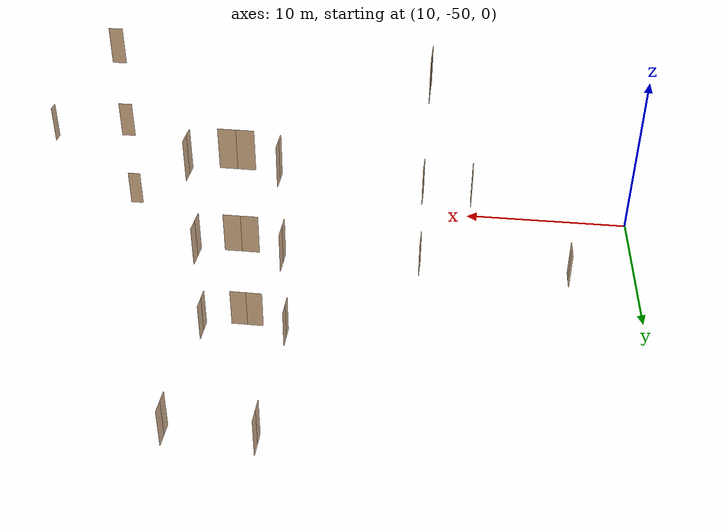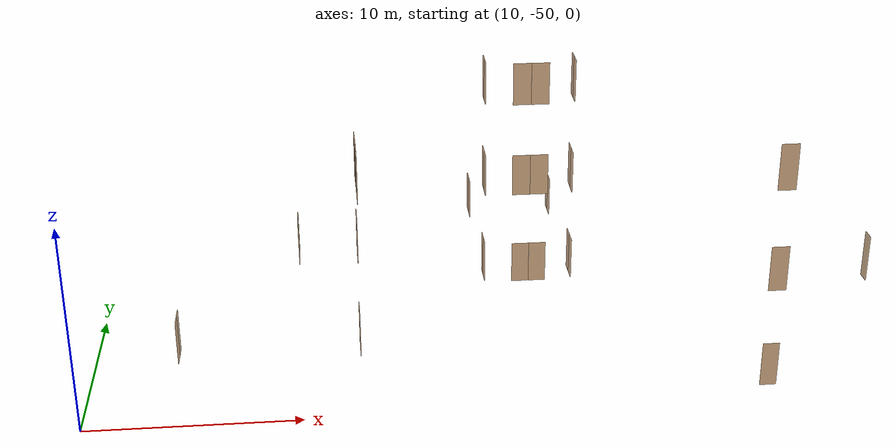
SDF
<sdf version="1.7">
 <world name="sim_world">
  <model name="p1">
   <pose>13.92503185090813 -43.73868181683508 0.0 0 0 1.5707963267948966</pose>
   <link name="right">
    <pose>0.3680335397469694 0 1.11 0 0 0</pose>
    <visual name="right_visual">
     <geometry><box><size>0.7260670794939388 0.03 2.2</size></box></geometry>
     <material>
      <ambient>0.5 0.25 0 0.6</ambient>
      <diffuse>0.5 0.25 0 0.6</diffuse>
      <pbr><metal><metalness>0.0</metalness></metal></pbr>
     </material>
    </visual>
    <collision name="right_collision">
     <geometry><box><size>0.7260670794939388 0.03 2.2</size></box></geometry>
     <surface><contact><collide_bitmask>0x02</collide_bitmask></contact></surface>
    </collision>
    <inertial>
     <mass>50.0</mass>
     <inertia><ixx>20.17041666666667</ixx><iyy>22.363222516353577</iyy><izz>2.2003058496869072</izz></inertia>
    </inertial>
   </link>
   <joint name="right_joint" type="revolute">
    <parent>world</parent>
    <child>right</child>
    <axis><xyz>0 0 -1</xyz><limit><lower>0</lower><upper>1.57</upper></limit></axis>
    <pose>0.3680335397469694 0 0 0 0 0</pose>
   </joint>
   <link name="left">
    <pose>-0.3680335397469694 0 1.11 0 0 0</pose>
    <visual name="left_visual">
     <geometry><box><size>0.7260670794939388 0.03 2.2</size></box></geometry>
     <material>
      <ambient>0.5 0.25 0 0.6</ambient>
      <diffuse>0.5 0.25 0 0.6</diffuse>
      <pbr><metal><metalness>0.0</metalness></metal></pbr>
     </material>
    </visual>
    <collision name="left_collision">
     <geometry><box><size>0.7260670794939388 0.03 2.2</size></box></geometry>
     <surface><contact><collide_bitmask>0x02</collide_bitmask></contact></surface>
    </collision>
    <inertial>
     <mass>50.0</mass>
     <inertia><ixx>20.17041666666667</ixx><iyy>22.363222516353577</iyy><izz>2.2003058496869072</izz></inertia>
    </inertial>
   </link>
   <joint name="left_joint" type="revolute">
    <parent>world</parent>
    <child>left</child>
    <axis><xyz>0 0 -1</xyz><limit><lower>-1.57</lower><upper>0</upper></limit></axis>
    <pose>-0.3680335397469694 0 0 0 0 0</pose>
   </joint>
   <plugin name="register_component" filename="libregister_component.so">
    <component name="Door">
     <v_max_door>0.5</v_max_door>
     <a_max_door>0.3</a_max_door>
     <a_nom_door>0.15</a_nom_door>
     <dx_min_door>0.01</dx_min_door>
     <f_max_door>500.0</f_max_door>
     <ros_interface>true</ros_interface>
     <door name="p1" type="DoubleSwingDoor" left_joint_name="left_joint" right_joint_name="right_joint"/>
    </component>
   </plugin>
  </model>
  <model name="p4">
   <pose>22.707593849071152 -43.76862537406302 0.0 0 0 1.5707963267948966</pose>
   <link name="right">
    <pose>0.36870574205208584 0 1.11 0 0 0</pose>
    <visual name="right_visual">
     <geometry><box><size>0.7274114841041717 0.03 2.2</size></box></geometry>
     <material>
      <ambient>0.5 0.25 0 0.6</ambient>
      <diffuse>0.5 0.25 0 0.6</diffuse>
      <pbr><metal><metalness>0.0</metalness></metal></pbr>
     </material>
    </visual>
    <collision name="right_collision">
     <geometry><box><size>0.7274114841041717 0.03 2.2</size></box></geometry>
     <surface><contact><collide_bitmask>0x02</collide_bitmask></contact></surface>
    </collision>
    <inertial>
     <mass>50.0</mass>
     <inertia><ixx>20.17041666666667</ixx><iyy>22.37136444669431</iyy><izz>2.2084477800276403</izz></inertia>
    </inertial>
   </link>
   <joint name="right_joint" type="revolute">
    <parent>world</parent>
    <child>right</child>
    <axis><xyz>0 0 -1</xyz><limit><lower>0</lower><upper>1.57</upper></limit></axis>
    <pose>0.36870574205208584 0 0 0 0 0</pose>
   </joint>
   <link name="left">
    <pose>-0.36870574205208584 0 1.11 0 0 0</pose>
    <visual name="left_visual">
     <geometry><box><size>0.7274114841041717 0.03 2.2</size></box></geometry>
     <material>
      <ambient>0.5 0.25 0 0.6</ambient>
      <diffuse>0.5 0.25 0 0.6</diffuse>
      <pbr><metal><metalness>0.0</metalness></metal></pbr>
     </material>
    </visual>
    <collision name="left_collision">
     <geometry><box><size>0.7274114841041717 0.03 2.2</size></box></geometry>
     <surface><contact><collide_bitmask>0x02</collide_bitmask></contact></surface>
    </collision>
    <inertial>
     <mass>50.0</mass>
     <inertia><ixx>20.17041666666667</ixx><iyy>22.37136444669431</iyy><izz>2.2084477800276403</izz></inertia>
    </inertial>
   </link>
   <joint name="left_joint" type="revolute">
    <parent>world</parent>
    <child>left</child>
    <axis><xyz>0 0 -1</xyz><limit><lower>-1.57</lower><upper>0</upper></limit></axis>
    <pose>-0.36870574205208584 0 0 0 0 0</pose>
   </joint>
   <plugin name="register_component" filename="libregister_component.so">
    <component name="Door">
     <v_max_door>0.5</v_max_door>
     <a_max_door>0.3</a_max_door>
     <a_nom_door>0.15</a_nom_door>
     <dx_min_door>0.01</dx_min_door>
     <f_max_door>500.0</f_max_door>
     <ros_interface>true</ros_interface>
     <door name="p4" type="DoubleSwingDoor" left_joint_name="left_joint" right_joint_name="right_joint"/>
    </component>
   </plugin>
  </model>
  <model name="p5">
   <pose>31.846945275695557 -37.258029391721756 0.0 0 0 3.141592653589793</pose>
   <link name="right">
    <pose>0.44889781043524657 0 1.11 0 0 0</pose>
    <visual name="right_visual">
     <geometry><box><size>0.8877956208704931 0.03 2.2</size></box></geometry>
     <material>
      <ambient>0.5 0.25 0 0.6</ambient>
      <diffuse>0.5 0.25 0 0.6</diffuse>
      <pbr><metal><metalness>0.0</metalness></metal></pbr>
     </material>
    </visual>
    <collision name="right_collision">
     <geometry><box><size>0.8877956208704931 0.03 2.2</size></box></geometry>
     <surface><contact><collide_bitmask>0x02</collide_bitmask></contact></surface>
    </collision>
    <inertial>
     <mass>50.0</mass>
     <inertia><ixx>20.17041666666667</ixx><iyy>23.450754435153442</iyy><izz>3.2878377684867686</izz></inertia>
    </inertial>
   </link>
   <joint name="right_joint" type="revolute">
    <parent>world</parent>
    <child>right</child>
    <axis><xyz>0 0 -1</xyz><limit><lower>0</lower><upper>1.57</upper></limit></axis>
    <pose>0.44889781043524657 0 0 0 0 0</pose>
   </joint>
   <link name="left">
    <pose>-0.44889781043524657 0 1.11 0 0 0</pose>
    <visual name="left_visual">
     <geometry><box><size>0.8877956208704931 0.03 2.2</size></box></geometry>
     <material>
      <ambient>0.5 0.25 0 0.6</ambient>
      <diffuse>0.5 0.25 0 0.6</diffuse>
      <pbr><metal><metalness>0.0</metalness></metal></pbr>
     </material>
    </visual>
    <collision name="left_collision">
     <geometry><box><size>0.8877956208704931 0.03 2.2</size></box></geometry>
     <surface><contact><collide_bitmask>0x02</collide_bitmask></contact></surface>
    </collision>
    <inertial>
     <mass>50.0</mass>
     <inertia><ixx>20.17041666666667</ixx><iyy>23.450754435153442</iyy><izz>3.2878377684867686</izz></inertia>
    </inertial>
   </link>
   <joint name="left_joint" type="revolute">
    <parent>world</parent>
    <child>left</child>
    <axis><xyz>0 0 -1</xyz><limit><lower>-1.57</lower><upper>0</upper></limit></axis>
    <pose>-0.44889781043524657 0 0 0 0 0</pose>
   </joint>
   <plugin name="register_component" filename="libregister_component.so">
    <component name="Door">
     <v_max_door>0.5</v_max_door>
     <a_max_door>0.3</a_max_door>
     <a_nom_door>0.15</a_nom_door>
     <dx_min_door>0.01</dx_min_door>
     <f_max_door>500.0</f_max_door>
     <ros_interface>true</ros_interface>
     <door name="p5" type="DoubleSwingDoor" left_joint_name="left_joint" right_joint_name="right_joint"/>
    </component>
   </plugin>
  </model>
  <model name="p6">
   <pose>29.525769606826483 -36.40916565435101 0.0 0 0 -1.5653609225018528</pose>
   <link name="right">
    <pose>0.3577280184184884 0 1.11 0 0 0</pose>
    <visual name="right_visual">
     <geometry><box><size>0.7054560368369768 0.03 2.2</size></box></geometry>
     <material>
      <ambient>0.5 0.25 0 0.6</ambient>
      <diffuse>0.5 0.25 0 0.6</diffuse>
      <pbr><metal><metalness>0.0</metalness></metal></pbr>
     </material>
    </visual>
    <collision name="right_collision">
     <geometry><box><size>0.7054560368369768 0.03 2.2</size></box></geometry>
     <surface><contact><collide_bitmask>0x02</collide_bitmask></contact></surface>
    </collision>
    <inertial>
     <mass>50.0</mass>
     <inertia><ixx>20.17041666666667</ixx><iyy>22.240284249623897</iyy><izz>2.077367582957225</izz></inertia>
    </inertial>
   </link>
   <joint name="right_joint" type="revolute">
    <parent>world</parent>
    <child>right</child>
    <axis><xyz>0 0 -1</xyz><limit><lower>0</lower><upper>1.57</upper></limit></axis>
    <pose>0.3577280184184884 0 0 0 0 0</pose>
   </joint>
   <link name="left">
    <pose>-0.3577280184184884 0 1.11 0 0 0</pose>
    <visual name="left_visual">
     <geometry><box><size>0.7054560368369768 0.03 2.2</size></box></geometry>
     <material>
      <ambient>0.5 0.25 0 0.6</ambient>
      <diffuse>0.5 0.25 0 0.6</diffuse>
      <pbr><metal><metalness>0.0</metalness></metal></pbr>
     </material>
    </visual>
    <collision name="left_collision">
     <geometry><box><size>0.7054560368369768 0.03 2.2</size></box></geometry>
     <surface><contact><collide_bitmask>0x02</collide_bitmask></contact></surface>
    </collision>
    <inertial>
     <mass>50.0</mass>
     <inertia><ixx>20.17041666666667</ixx><iyy>22.240284249623897</iyy><izz>2.077367582957225</izz></inertia>
    </inertial>
   </link>
   <joint name="left_joint" type="revolute">
    <parent>world</parent>
    <child>left</child>
    <axis><xyz>0 0 -1</xyz><limit><lower>-1.57</lower><upper>0</upper></limit></axis>
    <pose>-0.3577280184184884 0 0 0 0 0</pose>
   </joint>
   <plugin name="register_component" filename="libregister_component.so">
    <component name="Door">
     <v_max_door>0.5</v_max_door>
     <a_max_door>0.3</a_max_door>
     <a_nom_door>0.15</a_nom_door>
     <dx_min_door>0.01</dx_min_door>
     <f_max_door>500.0</f_max_door>
     <ros_interface>true</ros_interface>
     <door name="p6" type="DoubleSwingDoor" left_joint_name="left_joint" right_joint_name="right_joint"/>
    </component>
   </plugin>
  </model>
  <model name="p7">
   <pose>34.15456579064326 -36.411565583242 0.0 0 0 1.5727803300521501</pose>
   <link name="right">
    <pose>0.3640121531227989 0 1.11 0 0 0</pose>
    <visual name="right_visual">
     <geometry><box><size>0.7180243062455978 0.03 2.2</size></box></geometry>
     <material>
      <ambient>0.5 0.25 0 0.6</ambient>
      <diffuse>0.5 0.25 0 0.6</diffuse>
      <pbr><metal><metalness>0.0</metalness></metal></pbr>
     </material>
    </visual>
    <collision name="right_collision">
     <geometry><box><size>0.7180243062455978 0.03 2.2</size></box></geometry>
     <surface><contact><collide_bitmask>0x02</collide_bitmask></contact></surface>
    </collision>
    <inertial>
     <mass>50.0</mass>
     <inertia><ixx>20.17041666666667</ixx><iyy>22.31482876816447</iyy><izz>2.1519121014977998</izz></inertia>
    </inertial>
   </link>
   <joint name="right_joint" type="revolute">
    <parent>world</parent>
    <child>right</child>
    <axis><xyz>0 0 -1</xyz><limit><lower>0</lower><upper>1.57</upper></limit></axis>
    <pose>0.3640121531227989 0 0 0 0 0</pose>
   </joint>
   <link name="left">
    <pose>-0.3640121531227989 0 1.11 0 0 0</pose>
    <visual name="left_visual">
     <geometry><box><size>0.7180243062455978 0.03 2.2</size></box></geometry>
     <material>
      <ambient>0.5 0.25 0 0.6</ambient>
      <diffuse>0.5 0.25 0 0.6</diffuse>
      <pbr><metal><metalness>0.0</metalness></metal></pbr>
     </material>
    </visual>
    <collision name="left_collision">
     <geometry><box><size>0.7180243062455978 0.03 2.2</size></box></geometry>
     <surface><contact><collide_bitmask>0x02</collide_bitmask></contact></surface>
    </collision>
    <inertial>
     <mass>50.0</mass>
     <inertia><ixx>20.17041666666667</ixx><iyy>22.31482876816447</iyy><izz>2.1519121014977998</izz></inertia>
    </inertial>
   </link>
   <joint name="left_joint" type="revolute">
    <parent>world</parent>
    <child>left</child>
    <axis><xyz>0 0 -1</xyz><limit><lower>-1.57</lower><upper>0</upper></limit></axis>
    <pose>-0.3640121531227989 0 0 0 0 0</pose>
   </joint>
   <plugin name="register_component" filename="libregister_component.so">
    <component name="Door">
     <v_max_door>0.5</v_max_door>
     <a_max_door>0.3</a_max_door>
     <a_nom_door>0.15</a_nom_door>
     <dx_min_door>0.01</dx_min_door>
     <f_max_door>500.0</f_max_door>
     <ros_interface>true</ros_interface>
     <door name="p7" type="DoubleSwingDoor" left_joint_name="left_joint" right_joint_name="right_joint"/>
    </component>
   </plugin>
  </model>
  <model name="p8">
   <pose>29.51809205653168 -28.285695238659613 0.0 0 0 -1.565509718267845</pose>
   <link name="right">
    <pose>0.3583388346022328 0 1.11 0 0 0</pose>
    <visual name="right_visual">
     <geometry><box><size>0.7066776692044656 0.03 2.2</size></box></geometry>
     <material>
      <ambient>0.5 0.25 0 0.6</ambient>
      <diffuse>0.5 0.25 0 0.6</diffuse>
      <pbr><metal><metalness>0.0</metalness></metal></pbr>
     </material>
    </visual>
    <collision name="right_collision">
     <geometry><box><size>0.7066776692044656 0.03 2.2</size></box></geometry>
     <surface><contact><collide_bitmask>0x02</collide_bitmask></contact></surface>
    </collision>
    <inertial>
     <mass>50.0</mass>
     <inertia><ixx>20.17041666666667</ixx><iyy>22.247472200634405</iyy><izz>2.084555533967734</izz></inertia>
    </inertial>
   </link>
   <joint name="right_joint" type="revolute">
    <parent>world</parent>
    <child>right</child>
    <axis><xyz>0 0 -1</xyz><limit><lower>0</lower><upper>1.57</upper></limit></axis>
    <pose>0.3583388346022328 0 0 0 0 0</pose>
   </joint>
   <link name="left">
    <pose>-0.3583388346022328 0 1.11 0 0 0</pose>
    <visual name="left_visual">
     <geometry><box><size>0.7066776692044656 0.03 2.2</size></box></geometry>
     <material>
      <ambient>0.5 0.25 0 0.6</ambient>
      <diffuse>0.5 0.25 0 0.6</diffuse>
      <pbr><metal><metalness>0.0</metalness></metal></pbr>
     </material>
    </visual>
    <collision name="left_collision">
     <geometry><box><size>0.7066776692044656 0.03 2.2</size></box></geometry>
     <surface><contact><collide_bitmask>0x02</collide_bitmask></contact></surface>
    </collision>
    <inertial>
     <mass>50.0</mass>
     <inertia><ixx>20.17041666666667</ixx><iyy>22.247472200634405</iyy><izz>2.084555533967734</izz></inertia>
    </inertial>
   </link>
   <joint name="left_joint" type="revolute">
    <parent>world</parent>
    <child>left</child>
    <axis><xyz>0 0 -1</xyz><limit><lower>-1.57</lower><upper>0</upper></limit></axis>
    <pose>-0.3583388346022328 0 0 0 0 0</pose>
   </joint>
   <plugin name="register_component" filename="libregister_component.so">
    <component name="Door">
     <v_max_door>0.5</v_max_door>
     <a_max_door>0.3</a_max_door>
     <a_nom_door>0.15</a_nom_door>
     <dx_min_door>0.01</dx_min_door>
     <f_max_door>500.0</f_max_door>
     <ros_interface>true</ros_interface>
     <door name="p8" type="DoubleSwingDoor" left_joint_name="left_joint" right_joint_name="right_joint"/>
    </component>
   </plugin>
  </model>
  <model name="p9">
   <pose>34.15017703179167 -28.329493940920287 0.0 0 0 1.5749637556473903</pose>
   <link name="right">
    <pose>0.35325926742053404 0 1.11 0 0 0</pose>
    <visual name="right_visual">
     <geometry><box><size>0.6965185348410681 0.03 2.2</size></box></geometry>
     <material>
      <ambient>0.5 0.25 0 0.6</ambient>
      <diffuse>0.5 0.25 0 0.6</diffuse>
      <pbr><metal><metalness>0.0</metalness></metal></pbr>
     </material>
    </visual>
    <collision name="right_collision">
     <geometry><box><size>0.6965185348410681 0.03 2.2</size></box></geometry>
     <surface><contact><collide_bitmask>0x02</collide_bitmask></contact></surface>
    </collision>
    <inertial>
     <mass>50.0</mass>
     <inertia><ixx>20.17041666666667</ixx><iyy>22.188075289071456</iyy><izz>2.025158622404784</izz></inertia>
    </inertial>
   </link>
   <joint name="right_joint" type="revolute">
    <parent>world</parent>
    <child>right</child>
    <axis><xyz>0 0 -1</xyz><limit><lower>0</lower><upper>1.57</upper></limit></axis>
    <pose>0.35325926742053404 0 0 0 0 0</pose>
   </joint>
   <link name="left">
    <pose>-0.35325926742053404 0 1.11 0 0 0</pose>
    <visual name="left_visual">
     <geometry><box><size>0.6965185348410681 0.03 2.2</size></box></geometry>
     <material>
      <ambient>0.5 0.25 0 0.6</ambient>
      <diffuse>0.5 0.25 0 0.6</diffuse>
      <pbr><metal><metalness>0.0</metalness></metal></pbr>
     </material>
    </visual>
    <collision name="left_collision">
     <geometry><box><size>0.6965185348410681 0.03 2.2</size></box></geometry>
     <surface><contact><collide_bitmask>0x02</collide_bitmask></contact></surface>
    </collision>
    <inertial>
     <mass>50.0</mass>
     <inertia><ixx>20.17041666666667</ixx><iyy>22.188075289071456</iyy><izz>2.025158622404784</izz></inertia>
    </inertial>
   </link>
   <joint name="left_joint" type="revolute">
    <parent>world</parent>
    <child>left</child>
    <axis><xyz>0 0 -1</xyz><limit><lower>-1.57</lower><upper>0</upper></limit></axis>
    <pose>-0.35325926742053404 0 0 0 0 0</pose>
   </joint>
   <plugin name="register_component" filename="libregister_component.so">
    <component name="Door">
     <v_max_door>0.5</v_max_door>
     <a_max_door>0.3</a_max_door>
     <a_nom_door>0.15</a_nom_door>
     <dx_min_door>0.01</dx_min_door>
     <f_max_door>500.0</f_max_door>
     <ros_interface>true</ros_interface>
     <door name="p9" type="DoubleSwingDoor" left_joint_name="left_joint" right_joint_name="right_joint"/>
    </component>
   </plugin>
  </model>
  <model name="p33">
   <pose>41.68509821931205 -48.958060501911085 0.0 0 0 -3.133400683478625</pose>
   <link name="right">
    <pose>0 0 1.11 0 0 0</pose>
    <visual name="right_visual">
     <geometry><box><size>0.7875142416448618 0.03 2.2</size></box></geometry>
     <material>
      <ambient>0.5 0.25 0 0.6</ambient>
      <diffuse>0.5 0.25 0 0.6</diffuse>
      <pbr><metal><metalness>0.0</metalness></metal></pbr>
     </material>
    </visual>
    <collision name="right_collision">
     <geometry><box><size>0.7875142416448618 0.03 2.2</size></box></geometry>
     <surface><contact><collide_bitmask>0x02</collide_bitmask></contact></surface>
    </collision>
    <inertial>
     <mass>50.0</mass>
     <inertia><ixx>20.17041666666667</ixx><iyy>22.75074450330618</iyy><izz>2.5878278366395078</izz></inertia>
    </inertial>
   </link>
   <joint name="right_joint" type="revolute">
    <parent>world</parent>
    <child>right</child>
    <axis><xyz>0 0 1</xyz><limit><lower>0</lower><upper>1.57</upper></limit></axis>
    <pose>0.3987571208224309 0 0 0 0 0</pose>
   </joint>
   <plugin name="register_component" filename="libregister_component.so">
    <component name="Door">
     <v_max_door>0.5</v_max_door>
     <a_max_door>0.3</a_max_door>
     <a_nom_door>0.15</a_nom_door>
     <dx_min_door>0.01</dx_min_door>
     <f_max_door>500.0</f_max_door>
     <ros_interface>true</ros_interface>
     <door name="p33" type="SwingDoor" left_joint_name="empty_joint" right_joint_name="right_joint"/>
    </component>
   </plugin>
  </model>
  <model name="puerta4">
   <pose>46.03164170890324 -48.078268454830095 5.0 0 0 1.581264085185515</pose>
   <link name="right">
    <pose>0 0 1.11 0 0 0</pose>
    <visual name="right_visual">
     <geometry><box><size>0.623475406547363 0.03 2.2</size></box></geometry>
     <material>
      <ambient>0.5 0.25 0 0.6</ambient>
      <diffuse>0.5 0.25 0 0.6</diffuse>
      <pbr><metal><metalness>0.0</metalness></metal></pbr>
     </material>
    </visual>
    <collision name="right_collision">
     <geometry><box><size>0.623475406547363 0.03 2.2</size></box></geometry>
     <surface><contact><collide_bitmask>0x02</collide_bitmask></contact></surface>
    </collision>
    <inertial>
     <mass>50.0</mass>
     <inertia><ixx>20.17041666666667</ixx><iyy>21.786339927372502</iyy><izz>1.6234232607058319</izz></inertia>
    </inertial>
   </link>
   <joint name="right_joint" type="revolute">
    <parent>world</parent>
    <child>right</child>
    <axis><xyz>0 0 -1</xyz><limit><lower>0</lower><upper>1.57</upper></limit></axis>
    <pose>0.3167377032736815 0 0 0 0 0</pose>
   </joint>
   <plugin name="register_component" filename="libregister_component.so">
    <component name="Door">
     <v_max_door>0.5</v_max_door>
     <a_max_door>0.3</a_max_door>
     <a_nom_door>0.15</a_nom_door>
     <dx_min_door>0.01</dx_min_door>
     <f_max_door>500.0</f_max_door>
     <ros_interface>true</ros_interface>
     <door name="puerta4" type="SwingDoor" left_joint_name="empty_joint" right_joint_name="right_joint"/>
    </component>
   </plugin>
  </model>
  <model name="puerta36">
   <pose>19.972818291539923 -43.69459188126483 5.0 0 0 1.5747471141747484</pose>
   <link name="right">
    <pose>0.3028438594578976 0 1.11 0 0 0</pose>
    <visual name="right_visual">
     <geometry><box><size>0.5956877189157952 0.03 2.2</size></box></geometry>
     <material>
      <ambient>0.5 0.25 0 0.6</ambient>
      <diffuse>0.5 0.25 0 0.6</diffuse>
      <pbr><metal><metalness>0.0</metalness></metal></pbr>
     </material>
    </visual>
    <collision name="right_collision">
     <geometry><box><size>0.5956877189157952 0.03 2.2</size></box></geometry>
     <surface><contact><collide_bitmask>0x02</collide_bitmask></contact></surface>
    </collision>
    <inertial>
     <mass>50.0</mass>
     <inertia><ixx>20.17041666666667</ixx><iyy>21.645182743612935</iyy><izz>1.4822660769462643</izz></inertia>
    </inertial>
   </link>
   <joint name="right_joint" type="prismatic">
    <parent>world</parent>
    <child>right</child>
    <axis>
     <xyz>1 0 0</xyz>
     <limit><lower>0.0</lower><upper>0.6056877189157952</upper><effort>500.0</effort></limit>
    </axis>
   </joint>
   <link name="left">
    <pose>-0.3028438594578976 0 1.11 0 0 0</pose>
    <visual name="left_visual">
     <geometry><box><size>0.5956877189157952 0.03 2.2</size></box></geometry>
     <material>
      <ambient>0.5 0.25 0 0.6</ambient>
      <diffuse>0.5 0.25 0 0.6</diffuse>
      <pbr><metal><metalness>0.0</metalness></metal></pbr>
     </material>
    </visual>
    <collision name="left_collision">
     <geometry><box><size>0.5956877189157952 0.03 2.2</size></box></geometry>
     <surface><contact><collide_bitmask>0x02</collide_bitmask></contact></surface>
    </collision>
    <inertial>
     <mass>50.0</mass>
     <inertia><ixx>20.17041666666667</ixx><iyy>21.645182743612935</iyy><izz>1.4822660769462643</izz></inertia>
    </inertial>
   </link>
   <joint name="left_joint" type="prismatic">
    <parent>world</parent>
    <child>left</child>
    <axis>
     <xyz>1 0 0</xyz>
     <limit><lower>-0.6056877189157952</lower><upper>0.0</upper><effort>500.0</effort></limit>
    </axis>
   </joint>
   <plugin name="register_component" filename="libregister_component.so">
    <component name="Door">
     <v_max_door>0.2</v_max_door>
     <a_max_door>0.2</a_max_door>
     <a_nom_door>0.08</a_nom_door>
     <dx_min_door>0.001</dx_min_door>
     <f_max_door>100.0</f_max_door>
     <ros_interface>true</ros_interface>
     <door name="puerta36" type="DoubleSlidingDoor" left_joint_name="left_joint" right_joint_name="right_joint"/>
    </component>
   </plugin>
  </model>
  <model name="puerta39">
   <pose>22.717531692519692 -43.71435159393957 5.0 0 0 1.5709493853957186</pose>
   <link name="right">
    <pose>0.34635717847325953 0 1.11 0 0 0</pose>
    <visual name="right_visual">
     <geometry><box><size>0.682714356946519 0.03 2.2</size></box></geometry>
     <material>
      <ambient>0.5 0.25 0 0.6</ambient>
      <diffuse>0.5 0.25 0 0.6</diffuse>
      <pbr><metal><metalness>0.0</metalness></metal></pbr>
     </material>
    </visual>
    <collision name="right_collision">
     <geometry><box><size>0.682714356946519 0.03 2.2</size></box></geometry>
     <surface><contact><collide_bitmask>0x02</collide_bitmask></contact></surface>
    </collision>
    <inertial>
     <mass>50.0</mass>
     <inertia><ixx>20.17041666666667</ixx><iyy>22.108745388253748</iyy><izz>1.9458287215870795</izz></inertia>
    </inertial>
   </link>
   <joint name="right_joint" type="revolute">
    <parent>world</parent>
    <child>right</child>
    <axis><xyz>0 0 -1</xyz><limit><lower>0</lower><upper>1.57</upper></limit></axis>
    <pose>0.34635717847325953 0 0 0 0 0</pose>
   </joint>
   <link name="left">
    <pose>-0.34635717847325953 0 1.11 0 0 0</pose>
    <visual name="left_visual">
     <geometry><box><size>0.682714356946519 0.03 2.2</size></box></geometry>
     <material>
      <ambient>0.5 0.25 0 0.6</ambient>
      <diffuse>0.5 0.25 0 0.6</diffuse>
      <pbr><metal><metalness>0.0</metalness></metal></pbr>
     </material>
    </visual>
    <collision name="left_collision">
     <geometry><box><size>0.682714356946519 0.03 2.2</size></box></geometry>
     <surface><contact><collide_bitmask>0x02</collide_bitmask></contact></surface>
    </collision>
    <inertial>
     <mass>50.0</mass>
     <inertia><ixx>20.17041666666667</ixx><iyy>22.108745388253748</iyy><izz>1.9458287215870795</izz></inertia>
    </inertial>
   </link>
   <joint name="left_joint" type="revolute">
    <parent>world</parent>
    <child>left</child>
    <axis><xyz>0 0 -1</xyz><limit><lower>-1.57</lower><upper>0</upper></limit></axis>
    <pose>-0.34635717847325953 0 0 0 0 0</pose>
   </joint>
   <plugin name="register_component" filename="libregister_component.so">
    <component name="Door">
     <v_max_door>0.5</v_max_door>
     <a_max_door>0.3</a_max_door>
     <a_nom_door>0.15</a_nom_door>
     <dx_min_door>0.01</dx_min_door>
     <f_max_door>500.0</f_max_door>
     <ros_interface>true</ros_interface>
     <door name="puerta39" type="DoubleSwingDoor" left_joint_name="left_joint" right_joint_name="right_joint"/>
    </component>
   </plugin>
  </model>
  <model name="puerta41">
   <pose>41.69163066444355 -48.98085710186527 5.0 0 0 -3.134043825218556</pose>
   <link name="right">
    <pose>0 0 1.11 0 0 0</pose>
    <visual name="right_visual">
     <geometry><box><size>0.8344194258561598 0.03 2.2</size></box></geometry>
     <material>
      <ambient>0.5 0.25 0 0.6</ambient>
      <diffuse>0.5 0.25 0 0.6</diffuse>
      <pbr><metal><metalness>0.0</metalness></metal></pbr>
     </material>
    </visual>
    <collision name="right_collision">
     <geometry><box><size>0.8344194258561598 0.03 2.2</size></box></geometry>
     <surface><contact><collide_bitmask>0x02</collide_bitmask></contact></surface>
    </collision>
    <inertial>
     <mass>50.0</mass>
     <inertia><ixx>20.17041666666667</ixx><iyy>23.067732409358854</iyy><izz>2.9048157426921812</izz></inertia>
    </inertial>
   </link>
   <joint name="right_joint" type="revolute">
    <parent>world</parent>
    <child>right</child>
    <axis><xyz>0 0 1</xyz><limit><lower>0</lower><upper>1.57</upper></limit></axis>
    <pose>0.4222097129280799 0 0 0 0 0</pose>
   </joint>
   <plugin name="register_component" filename="libregister_component.so">
    <component name="Door">
     <v_max_door>0.5</v_max_door>
     <a_max_door>0.3</a_max_door>
     <a_nom_door>0.15</a_nom_door>
     <dx_min_door>0.01</dx_min_door>
     <f_max_door>500.0</f_max_door>
     <ros_interface>true</ros_interface>
     <door name="puerta41" type="SwingDoor" left_joint_name="empty_joint" right_joint_name="right_joint"/>
    </component>
   </plugin>
  </model>
  <model name="puerta42">
   <pose>31.863215162934722 -37.21145108099617 5.0 0 0 -3.1410583067296796</pose>
   <link name="right">
    <pose>0.46630265124863757 0 1.11 0 0 0</pose>
    <visual name="right_visual">
     <geometry><box><size>0.9226053024972751 0.03 2.2</size></box></geometry>
     <material>
      <ambient>0.5 0.25 0 0.6</ambient>
      <diffuse>0.5 0.25 0 0.6</diffuse>
      <pbr><metal><metalness>0.0</metalness></metal></pbr>
     </material>
    </visual>
    <collision name="right_collision">
     <geometry><box><size>0.9226053024972751 0.03 2.2</size></box></geometry>
     <surface><contact><collide_bitmask>0x02</collide_bitmask></contact></surface>
    </collision>
    <inertial>
     <mass>50.0</mass>
     <inertia><ixx>20.17041666666667</ixx><iyy>23.71333560081704</iyy><izz>3.5504189341503696</izz></inertia>
    </inertial>
   </link>
   <joint name="right_joint" type="revolute">
    <parent>world</parent>
    <child>right</child>
    <axis><xyz>0 0 -1</xyz><limit><lower>0</lower><upper>1.57</upper></limit></axis>
    <pose>0.46630265124863757 0 0 0 0 0</pose>
   </joint>
   <link name="left">
    <pose>-0.46630265124863757 0 1.11 0 0 0</pose>
    <visual name="left_visual">
     <geometry><box><size>0.9226053024972751 0.03 2.2</size></box></geometry>
     <material>
      <ambient>0.5 0.25 0 0.6</ambient>
      <diffuse>0.5 0.25 0 0.6</diffuse>
      <pbr><metal><metalness>0.0</metalness></metal></pbr>
     </material>
    </visual>
    <collision name="left_collision">
     <geometry><box><size>0.9226053024972751 0.03 2.2</size></box></geometry>
     <surface><contact><collide_bitmask>0x02</collide_bitmask></contact></surface>
    </collision>
    <inertial>
     <mass>50.0</mass>
     <inertia><ixx>20.17041666666667</ixx><iyy>23.71333560081704</iyy><izz>3.5504189341503696</izz></inertia>
    </inertial>
   </link>
   <joint name="left_joint" type="revolute">
    <parent>world</parent>
    <child>left</child>
    <axis><xyz>0 0 -1</xyz><limit><lower>-1.57</lower><upper>0</upper></limit></axis>
    <pose>-0.46630265124863757 0 0 0 0 0</pose>
   </joint>
   <plugin name="register_component" filename="libregister_component.so">
    <component name="Door">
     <v_max_door>0.5</v_max_door>
     <a_max_door>0.3</a_max_door>
     <a_nom_door>0.15</a_nom_door>
     <dx_min_door>0.01</dx_min_door>
     <f_max_door>500.0</f_max_door>
     <ros_interface>true</ros_interface>
     <door name="puerta42" type="DoubleSwingDoor" left_joint_name="left_joint" right_joint_name="right_joint"/>
    </component>
   </plugin>
  </model>
  <model name="puerta43">
   <pose>29.544372863204664 -36.43158280180376 5.0 0 0 -1.569247714936888</pose>
   <link name="right">
    <pose>0.3901675355090965 0 1.11 0 0 0</pose>
    <visual name="right_visual">
     <geometry><box><size>0.770335071018193 0.03 2.2</size></box></geometry>
     <material>
      <ambient>0.5 0.25 0 0.6</ambient>
      <diffuse>0.5 0.25 0 0.6</diffuse>
      <pbr><metal><metalness>0.0</metalness></metal></pbr>
     </material>
    </visual>
    <collision name="right_collision">
     <geometry><box><size>0.770335071018193 0.03 2.2</size></box></geometry>
     <surface><contact><collide_bitmask>0x02</collide_bitmask></contact></surface>
    </collision>
    <inertial>
     <mass>50.0</mass>
     <inertia><ixx>20.17041666666667</ixx><iyy>22.63923384016919</iyy><izz>2.4763171735025185</izz></inertia>
    </inertial>
   </link>
   <joint name="right_joint" type="revolute">
    <parent>world</parent>
    <child>right</child>
    <axis><xyz>0 0 -1</xyz><limit><lower>0</lower><upper>1.57</upper></limit></axis>
    <pose>0.3901675355090965 0 0 0 0 0</pose>
   </joint>
   <link name="left">
    <pose>-0.3901675355090965 0 1.11 0 0 0</pose>
    <visual name="left_visual">
     <geometry><box><size>0.770335071018193 0.03 2.2</size></box></geometry>
     <material>
      <ambient>0.5 0.25 0 0.6</ambient>
      <diffuse>0.5 0.25 0 0.6</diffuse>
      <pbr><metal><metalness>0.0</metalness></metal></pbr>
     </material>
    </visual>
    <collision name="left_collision">
     <geometry><box><size>0.770335071018193 0.03 2.2</size></box></geometry>
     <surface><contact><collide_bitmask>0x02</collide_bitmask></contact></surface>
    </collision>
    <inertial>
     <mass>50.0</mass>
     <inertia><ixx>20.17041666666667</ixx><iyy>22.63923384016919</iyy><izz>2.4763171735025185</izz></inertia>
    </inertial>
   </link>
   <joint name="left_joint" type="revolute">
    <parent>world</parent>
    <child>left</child>
    <axis><xyz>0 0 -1</xyz><limit><lower>-1.57</lower><upper>0</upper></limit></axis>
    <pose>-0.3901675355090965 0 0 0 0 0</pose>
   </joint>
   <plugin name="register_component" filename="libregister_component.so">
    <component name="Door">
     <v_max_door>0.5</v_max_door>
     <a_max_door>0.3</a_max_door>
     <a_nom_door>0.15</a_nom_door>
     <dx_min_door>0.01</dx_min_door>
     <f_max_door>500.0</f_max_door>
     <ros_interface>true</ros_interface>
     <door name="puerta43" type="DoubleSwingDoor" left_joint_name="left_joint" right_joint_name="right_joint"/>
    </component>
   </plugin>
  </model>
  <model name="puerta44">
   <pose>34.097789990754094 -36.44440944939845 5.0 0 0 1.5551807752751552</pose>
   <link name="right">
    <pose>0.37985222262520524 0 1.11 0 0 0</pose>
    <visual name="right_visual">
     <geometry><box><size>0.7497044452504105 0.03 2.2</size></box></geometry>
     <material>
      <ambient>0.5 0.25 0 0.6</ambient>
      <diffuse>0.5 0.25 0 0.6</diffuse>
      <pbr><metal><metalness>0.0</metalness></metal></pbr>
     </material>
    </visual>
    <collision name="right_collision">
     <geometry><box><size>0.7497044452504105 0.03 2.2</size></box></geometry>
     <surface><contact><collide_bitmask>0x02</collide_bitmask></contact></surface>
    </collision>
    <inertial>
     <mass>50.0</mass>
     <inertia><ixx>20.17041666666667</ixx><iyy>22.508569813450947</iyy><izz>2.345653146784274</izz></inertia>
    </inertial>
   </link>
   <joint name="right_joint" type="revolute">
    <parent>world</parent>
    <child>right</child>
    <axis><xyz>0 0 -1</xyz><limit><lower>0</lower><upper>1.57</upper></limit></axis>
    <pose>0.37985222262520524 0 0 0 0 0</pose>
   </joint>
   <link name="left">
    <pose>-0.37985222262520524 0 1.11 0 0 0</pose>
    <visual name="left_visual">
     <geometry><box><size>0.7497044452504105 0.03 2.2</size></box></geometry>
     <material>
      <ambient>0.5 0.25 0 0.6</ambient>
      <diffuse>0.5 0.25 0 0.6</diffuse>
      <pbr><metal><metalness>0.0</metalness></metal></pbr>
     </material>
    </visual>
    <collision name="left_collision">
     <geometry><box><size>0.7497044452504105 0.03 2.2</size></box></geometry>
     <surface><contact><collide_bitmask>0x02</collide_bitmask></contact></surface>
    </collision>
    <inertial>
     <mass>50.0</mass>
     <inertia><ixx>20.17041666666667</ixx><iyy>22.508569813450947</iyy><izz>2.345653146784274</izz></inertia>
    </inertial>
   </link>
   <joint name="left_joint" type="revolute">
    <parent>world</parent>
    <child>left</child>
    <axis><xyz>0 0 -1</xyz><limit><lower>-1.57</lower><upper>0</upper></limit></axis>
    <pose>-0.37985222262520524 0 0 0 0 0</pose>
   </joint>
   <plugin name="register_component" filename="libregister_component.so">
    <component name="Door">
     <v_max_door>0.5</v_max_door>
     <a_max_door>0.3</a_max_door>
     <a_nom_door>0.15</a_nom_door>
     <dx_min_door>0.01</dx_min_door>
     <f_max_door>500.0</f_max_door>
     <ros_interface>true</ros_interface>
     <door name="puerta44" type="DoubleSwingDoor" left_joint_name="left_joint" right_joint_name="right_joint"/>
    </component>
   </plugin>
  </model>
  <model name="puerta121">
   <pose>41.69163778545594 -48.98103849150981 10.0 0 0 -3.134042114741682</pose>
   <link name="right">
    <pose>0 0 1.11 0 0 0</pose>
    <visual name="right_visual">
     <geometry><box><size>0.834429295097816 0.03 2.2</size></box></geometry>
     <material>
      <ambient>0.5 0.25 0 0.6</ambient>
      <diffuse>0.5 0.25 0 0.6</diffuse>
      <pbr><metal><metalness>0.0</metalness></metal></pbr>
     </material>
    </visual>
    <collision name="right_collision">
     <geometry><box><size>0.834429295097816 0.03 2.2</size></box></geometry>
     <surface><contact><collide_bitmask>0x02</collide_bitmask></contact></surface>
    </collision>
    <inertial>
     <mass>50.0</mass>
     <inertia><ixx>20.17041666666667</ixx><iyy>23.06780103548933</iyy><izz>2.9048843688226595</izz></inertia>
    </inertial>
   </link>
   <joint name="right_joint" type="revolute">
    <parent>world</parent>
    <child>right</child>
    <axis><xyz>0 0 1</xyz><limit><lower>0</lower><upper>1.57</upper></limit></axis>
    <pose>0.42221464754890803 0 0 0 0 0</pose>
   </joint>
   <plugin name="register_component" filename="libregister_component.so">
    <component name="Door">
     <v_max_door>0.5</v_max_door>
     <a_max_door>0.3</a_max_door>
     <a_nom_door>0.15</a_nom_door>
     <dx_min_door>0.01</dx_min_door>
     <f_max_door>500.0</f_max_door>
     <ros_interface>true</ros_interface>
     <door name="puerta121" type="SwingDoor" left_joint_name="empty_joint" right_joint_name="right_joint"/>
    </component>
   </plugin>
  </model>
  <model name="puerta122">
   <pose>31.834482605660263 -37.27391206921763 10.0 0 0 3.137980214154358</pose>
   <link name="right">
    <pose>0.4616385946370133 0 1.11 0 0 0</pose>
    <visual name="right_visual">
     <geometry><box><size>0.9132771892740266 0.03 2.2</size></box></geometry>
     <material>
      <ambient>0.5 0.25 0 0.6</ambient>
      <diffuse>0.5 0.25 0 0.6</diffuse>
      <pbr><metal><metalness>0.0</metalness></metal></pbr>
     </material>
    </visual>
    <collision name="right_collision">
     <geometry><box><size>0.9132771892740266 0.03 2.2</size></box></geometry>
     <surface><contact><collide_bitmask>0x02</collide_bitmask></contact></surface>
    </collision>
    <inertial>
     <mass>50.0</mass>
     <inertia><ixx>20.17041666666667</ixx><iyy>23.641980101867777</iyy><izz>3.479063435201109</izz></inertia>
    </inertial>
   </link>
   <joint name="right_joint" type="revolute">
    <parent>world</parent>
    <child>right</child>
    <axis><xyz>0 0 -1</xyz><limit><lower>0</lower><upper>1.57</upper></limit></axis>
    <pose>0.4616385946370133 0 0 0 0 0</pose>
   </joint>
   <link name="left">
    <pose>-0.4616385946370133 0 1.11 0 0 0</pose>
    <visual name="left_visual">
     <geometry><box><size>0.9132771892740266 0.03 2.2</size></box></geometry>
     <material>
      <ambient>0.5 0.25 0 0.6</ambient>
      <diffuse>0.5 0.25 0 0.6</diffuse>
      <pbr><metal><metalness>0.0</metalness></metal></pbr>
     </material>
    </visual>
    <collision name="left_collision">
     <geometry><box><size>0.9132771892740266 0.03 2.2</size></box></geometry>
     <surface><contact><collide_bitmask>0x02</collide_bitmask></contact></surface>
    </collision>
    <inertial>
     <mass>50.0</mass>
     <inertia><ixx>20.17041666666667</ixx><iyy>23.641980101867777</iyy><izz>3.479063435201109</izz></inertia>
    </inertial>
   </link>
   <joint name="left_joint" type="revolute">
    <parent>world</parent>
    <child>left</child>
    <axis><xyz>0 0 -1</xyz><limit><lower>-1.57</lower><upper>0</upper></limit></axis>
    <pose>-0.4616385946370133 0 0 0 0 0</pose>
   </joint>
   <plugin name="register_component" filename="libregister_component.so">
    <component name="Door">
     <v_max_door>0.5</v_max_door>
     <a_max_door>0.3</a_max_door>
     <a_nom_door>0.15</a_nom_door>
     <dx_min_door>0.01</dx_min_door>
     <f_max_door>500.0</f_max_door>
     <ros_interface>true</ros_interface>
     <door name="puerta122" type="DoubleSwingDoor" left_joint_name="left_joint" right_joint_name="right_joint"/>
    </component>
   </plugin>
  </model>
  <model name="puerta123">
   <pose>29.537601505608865 -36.41105922655733 10.0 0 0 -1.5720817538375909</pose>
   <link name="right">
    <pose>0.32020861351378355 0 1.11 0 0 0</pose>
    <visual name="right_visual">
     <geometry><box><size>0.6304172270275671 0.03 2.2</size></box></geometry>
     <material>
      <ambient>0.5 0.25 0 0.6</ambient>
      <diffuse>0.5 0.25 0 0.6</diffuse>
      <pbr><metal><metalness>0.0</metalness></metal></pbr>
     </material>
    </visual>
    <collision name="right_collision">
     <geometry><box><size>0.6304172270275671 0.03 2.2</size></box></geometry>
     <surface><contact><collide_bitmask>0x02</collide_bitmask></contact></surface>
    </collision>
    <inertial>
     <mass>50.0</mass>
     <inertia><ixx>20.17041666666667</ixx><iyy>21.822607833888036</iyy><izz>1.659691167221363</izz></inertia>
    </inertial>
   </link>
   <joint name="right_joint" type="revolute">
    <parent>world</parent>
    <child>right</child>
    <axis><xyz>0 0 -1</xyz><limit><lower>0</lower><upper>1.57</upper></limit></axis>
    <pose>0.32020861351378355 0 0 0 0 0</pose>
   </joint>
   <link name="left">
    <pose>-0.32020861351378355 0 1.11 0 0 0</pose>
    <visual name="left_visual">
     <geometry><box><size>0.6304172270275671 0.03 2.2</size></box></geometry>
     <material>
      <ambient>0.5 0.25 0 0.6</ambient>
      <diffuse>0.5 0.25 0 0.6</diffuse>
      <pbr><metal><metalness>0.0</metalness></metal></pbr>
     </material>
    </visual>
    <collision name="left_collision">
     <geometry><box><size>0.6304172270275671 0.03 2.2</size></box></geometry>
     <surface><contact><collide_bitmask>0x02</collide_bitmask></contact></surface>
    </collision>
    <inertial>
     <mass>50.0</mass>
     <inertia><ixx>20.17041666666667</ixx><iyy>21.822607833888036</iyy><izz>1.659691167221363</izz></inertia>
    </inertial>
   </link>
   <joint name="left_joint" type="revolute">
    <parent>world</parent>
    <child>left</child>
    <axis><xyz>0 0 -1</xyz><limit><lower>-1.57</lower><upper>0</upper></limit></axis>
    <pose>-0.32020861351378355 0 0 0 0 0</pose>
   </joint>
   <plugin name="register_component" filename="libregister_component.so">
    <component name="Door">
     <v_max_door>0.5</v_max_door>
     <a_max_door>0.3</a_max_door>
     <a_nom_door>0.15</a_nom_door>
     <dx_min_door>0.01</dx_min_door>
     <f_max_door>500.0</f_max_door>
     <ros_interface>true</ros_interface>
     <door name="puerta123" type="DoubleSwingDoor" left_joint_name="left_joint" right_joint_name="right_joint"/>
    </component>
   </plugin>
  </model>
  <model name="puerta188">
   <pose>34.11646471545565 -36.430941768062794 10.0 0 0 1.5642959625671722</pose>
   <link name="right">
    <pose>0.32393254027427243 0 1.11 0 0 0</pose>
    <visual name="right_visual">
     <geometry><box><size>0.6378650805485448 0.03 2.2</size></box></geometry>
     <material>
      <ambient>0.5 0.25 0 0.6</ambient>
      <diffuse>0.5 0.25 0 0.6</diffuse>
      <pbr><metal><metalness>0.0</metalness></metal></pbr>
     </material>
    </visual>
    <collision name="right_collision">
     <geometry><box><size>0.6378650805485448 0.03 2.2</size></box></geometry>
     <surface><contact><collide_bitmask>0x02</collide_bitmask></contact></surface>
    </collision>
    <inertial>
     <mass>50.0</mass>
     <inertia><ixx>20.17041666666667</ixx><iyy>21.861966087430012</iyy><izz>1.6990494207633402</izz></inertia>
    </inertial>
   </link>
   <joint name="right_joint" type="revolute">
    <parent>world</parent>
    <child>right</child>
    <axis><xyz>0 0 -1</xyz><limit><lower>0</lower><upper>1.57</upper></limit></axis>
    <pose>0.32393254027427243 0 0 0 0 0</pose>
   </joint>
   <link name="left">
    <pose>-0.32393254027427243 0 1.11 0 0 0</pose>
    <visual name="left_visual">
     <geometry><box><size>0.6378650805485448 0.03 2.2</size></box></geometry>
     <material>
      <ambient>0.5 0.25 0 0.6</ambient>
      <diffuse>0.5 0.25 0 0.6</diffuse>
      <pbr><metal><metalness>0.0</metalness></metal></pbr>
     </material>
    </visual>
    <collision name="left_collision">
     <geometry><box><size>0.6378650805485448 0.03 2.2</size></box></geometry>
     <surface><contact><collide_bitmask>0x02</collide_bitmask></contact></surface>
    </collision>
    <inertial>
     <mass>50.0</mass>
     <inertia><ixx>20.17041666666667</ixx><iyy>21.861966087430012</iyy><izz>1.6990494207633402</izz></inertia>
    </inertial>
   </link>
   <joint name="left_joint" type="revolute">
    <parent>world</parent>
    <child>left</child>
    <axis><xyz>0 0 -1</xyz><limit><lower>-1.57</lower><upper>0</upper></limit></axis>
    <pose>-0.32393254027427243 0 0 0 0 0</pose>
   </joint>
   <plugin name="register_component" filename="libregister_component.so">
    <component name="Door">
     <v_max_door>0.5</v_max_door>
     <a_max_door>0.3</a_max_door>
     <a_nom_door>0.15</a_nom_door>
     <dx_min_door>0.01</dx_min_door>
     <f_max_door>500.0</f_max_door>
     <ros_interface>true</ros_interface>
     <door name="puerta188" type="DoubleSwingDoor" left_joint_name="left_joint" right_joint_name="right_joint"/>
    </component>
   </plugin>
  </model>
  <model name="puerta189">
   <pose>22.702690013310722 -46.48061767803891 10.0 0 0 1.5853321536780993</pose>
   <link name="right">
    <pose>0.37245823088464564 0 1.11 0 0 0</pose>
    <visual name="right_visual">
     <geometry><box><size>0.7349164617692913 0.03 2.2</size></box></geometry>
     <material>
      <ambient>0.5 0.25 0 0.6</ambient>
      <diffuse>0.5 0.25 0 0.6</diffuse>
      <pbr><metal><metalness>0.0</metalness></metal></pbr>
     </material>
    </visual>
    <collision name="right_collision">
     <geometry><box><size>0.7349164617692913 0.03 2.2</size></box></geometry>
     <surface><contact><collide_bitmask>0x02</collide_bitmask></contact></surface>
    </collision>
    <inertial>
     <mass>50.0</mass>
     <inertia><ixx>20.17041666666667</ixx><iyy>22.41709252408123</iyy><izz>2.2541758574145594</izz></inertia>
    </inertial>
   </link>
   <joint name="right_joint" type="revolute">
    <parent>world</parent>
    <child>right</child>
    <axis><xyz>0 0 -1</xyz><limit><lower>0</lower><upper>1.57</upper></limit></axis>
    <pose>0.37245823088464564 0 0 0 0 0</pose>
   </joint>
   <link name="left">
    <pose>-0.37245823088464564 0 1.11 0 0 0</pose>
    <visual name="left_visual">
     <geometry><box><size>0.7349164617692913 0.03 2.2</size></box></geometry>
     <material>
      <ambient>0.5 0.25 0 0.6</ambient>
      <diffuse>0.5 0.25 0 0.6</diffuse>
      <pbr><metal><metalness>0.0</metalness></metal></pbr>
     </material>
    </visual>
    <collision name="left_collision">
     <geometry><box><size>0.7349164617692913 0.03 2.2</size></box></geometry>
     <surface><contact><collide_bitmask>0x02</collide_bitmask></contact></surface>
    </collision>
    <inertial>
     <mass>50.0</mass>
     <inertia><ixx>20.17041666666667</ixx><iyy>22.41709252408123</iyy><izz>2.2541758574145594</izz></inertia>
    </inertial>
   </link>
   <joint name="left_joint" type="revolute">
    <parent>world</parent>
    <child>left</child>
    <axis><xyz>0 0 -1</xyz><limit><lower>-1.57</lower><upper>0</upper></limit></axis>
    <pose>-0.37245823088464564 0 0 0 0 0</pose>
   </joint>
   <plugin name="register_component" filename="libregister_component.so">
    <component name="Door">
     <v_max_door>0.5</v_max_door>
     <a_max_door>0.3</a_max_door>
     <a_nom_door>0.15</a_nom_door>
     <dx_min_door>0.01</dx_min_door>
     <f_max_door>500.0</f_max_door>
     <ros_interface>true</ros_interface>
     <door name="puerta189" type="DoubleSwingDoor" left_joint_name="left_joint" right_joint_name="right_joint"/>
    </component>
   </plugin>
  </model>
  <model name="puerta190">
   <pose>22.714002410201942 -47.988485749117935 10.0 0 0 1.5714316900247782</pose>
   <link name="right">
    <pose>0.38151522936711346 0 1.11 0 0 0</pose>
    <visual name="right_visual">
     <geometry><box><size>0.7530304587342269 0.03 2.2</size></box></geometry>
     <material>
      <ambient>0.5 0.25 0 0.6</ambient>
      <diffuse>0.5 0.25 0 0.6</diffuse>
      <pbr><metal><metalness>0.0</metalness></metal></pbr>
     </material>
    </visual>
    <collision name="right_collision">
     <geometry><box><size>0.7530304587342269 0.03 2.2</size></box></geometry>
     <surface><contact><collide_bitmask>0x02</collide_bitmask></contact></surface>
    </collision>
    <inertial>
     <mass>50.0</mass>
     <inertia><ixx>20.17041666666667</ixx><iyy>22.529395299089508</iyy><izz>2.3664786324228344</izz></inertia>
    </inertial>
   </link>
   <joint name="right_joint" type="revolute">
    <parent>world</parent>
    <child>right</child>
    <axis><xyz>0 0 -1</xyz><limit><lower>0</lower><upper>1.57</upper></limit></axis>
    <pose>0.38151522936711346 0 0 0 0 0</pose>
   </joint>
   <link name="left">
    <pose>-0.38151522936711346 0 1.11 0 0 0</pose>
    <visual name="left_visual">
     <geometry><box><size>0.7530304587342269 0.03 2.2</size></box></geometry>
     <material>
      <ambient>0.5 0.25 0 0.6</ambient>
      <diffuse>0.5 0.25 0 0.6</diffuse>
      <pbr><metal><metalness>0.0</metalness></metal></pbr>
     </material>
    </visual>
    <collision name="left_collision">
     <geometry><box><size>0.7530304587342269 0.03 2.2</size></box></geometry>
     <surface><contact><collide_bitmask>0x02</collide_bitmask></contact></surface>
    </collision>
    <inertial>
     <mass>50.0</mass>
     <inertia><ixx>20.17041666666667</ixx><iyy>22.529395299089508</iyy><izz>2.3664786324228344</izz></inertia>
    </inertial>
   </link>
   <joint name="left_joint" type="revolute">
    <parent>world</parent>
    <child>left</child>
    <axis><xyz>0 0 -1</xyz><limit><lower>-1.57</lower><upper>0</upper></limit></axis>
    <pose>-0.38151522936711346 0 0 0 0 0</pose>
   </joint>
   <plugin name="register_component" filename="libregister_component.so">
    <component name="Door">
     <v_max_door>0.5</v_max_door>
     <a_max_door>0.3</a_max_door>
     <a_nom_door>0.15</a_nom_door>
     <dx_min_door>0.01</dx_min_door>
     <f_max_door>500.0</f_max_door>
     <ros_interface>true</ros_interface>
     <door name="puerta190" type="DoubleSwingDoor" left_joint_name="left_joint" right_joint_name="right_joint"/>
    </component>
   </plugin>
  </model>
 </world>
</sdf>
